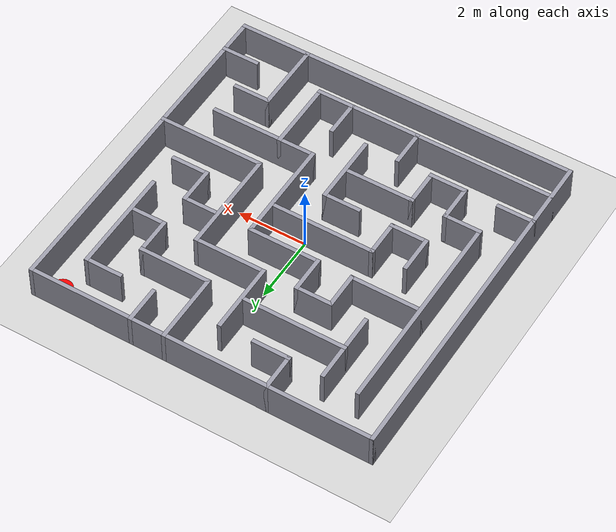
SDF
<?xml version="1.0" ?>
<sdf version="1.7">
  <world name="sharp_maze_world">
    <physics name="default_physics" default="0" type="ode">
      <max_step_size>0.001</max_step_size>
      <real_time_factor>1</real_time_factor>
      <real_time_update_rate>1000</real_time_update_rate>
    </physics>
    <scene>
      <ambient>0.6 0.6 0.6 1</ambient>
      <background>0.7 0.8 0.9 1</background>
      <shadows>true</shadows>
    </scene>
    <light name="sun" type="directional">
      <cast_shadows>true</cast_shadows>
      <pose>0 0 10 0 0 0</pose>
      <diffuse>0.8 0.8 0.8 1</diffuse>
      <specular>0.2 0.2 0.2 1</specular>
      <attenuation>
        <range>1000</range>
        <constant>0.9</constant>
        <linear>0.01</linear>
        <quadratic>0.001</quadratic>
      </attenuation>
      <direction>-0.4 0.2 -0.9</direction>
    </light>
    <model name="ground_plane">
      <static>true</static>
      <link name="link">
        <collision name="collision">
          <geometry>
            <plane><normal>0 0 1</normal><size>20.0 20.0</size></plane>
          </geometry>
          <surface><friction><ode><mu>100</mu><mu2>50</mu2></ode></friction></surface>
        </collision>
        <visual name="visual">
          <geometry>
            <plane><normal>0 0 1</normal><size>20.0 20.0</size></plane>
          </geometry>
          <material>
            <ambient>0.8 0.8 0.8 1</ambient>
            <diffuse>0.8 0.8 0.8 1</diffuse>
          </material>
        </visual>
      </link>
    </model>
    <model name="sharp_maze">
      <static>true</static>
      <pose>0 0 0 0 0 0</pose>
      <link name="walls">
        <collision name="wall_col_0">
          <pose>0.000 -5.000 0.500 0 0 0</pose>
          <geometry>
            <box><size>10.120 0.120 1.000</size></box>
          </geometry>
        </collision>
        <visual name="wall_vis_0">
          <pose>0.000 -5.000 0.500 0 0 0</pose>
          <geometry>
            <box><size>10.120 0.120 1.000</size></box>
          </geometry>
          <material>
            <ambient>0.5 0.5 0.55 1</ambient>
            <diffuse>0.6 0.6 0.65 1</diffuse>
          </material>
        </visual>
        <collision name="wall_col_1">
          <pose>-1.500 -4.000 0.500 0 0 0</pose>
          <geometry>
            <box><size>7.120 0.120 1.000</size></box>
          </geometry>
        </collision>
        <visual name="wall_vis_1">
          <pose>-1.500 -4.000 0.500 0 0 0</pose>
          <geometry>
            <box><size>7.120 0.120 1.000</size></box>
          </geometry>
          <material>
            <ambient>0.5 0.5 0.55 1</ambient>
            <diffuse>0.6 0.6 0.65 1</diffuse>
          </material>
        </visual>
        <collision name="wall_col_2">
          <pose>4.500 -4.000 0.500 0 0 0</pose>
          <geometry>
            <box><size>1.120 0.120 1.000</size></box>
          </geometry>
        </collision>
        <visual name="wall_vis_2">
          <pose>4.500 -4.000 0.500 0 0 0</pose>
          <geometry>
            <box><size>1.120 0.120 1.000</size></box>
          </geometry>
          <material>
            <ambient>0.5 0.5 0.55 1</ambient>
            <diffuse>0.6 0.6 0.65 1</diffuse>
          </material>
        </visual>
        <collision name="wall_col_3">
          <pose>-4.500 -3.000 0.500 0 0 0</pose>
          <geometry>
            <box><size>1.120 0.120 1.000</size></box>
          </geometry>
        </collision>
        <visual name="wall_vis_3">
          <pose>-4.500 -3.000 0.500 0 0 0</pose>
          <geometry>
            <box><size>1.120 0.120 1.000</size></box>
          </geometry>
          <material>
            <ambient>0.5 0.5 0.55 1</ambient>
            <diffuse>0.6 0.6 0.65 1</diffuse>
          </material>
        </visual>
        <collision name="wall_col_4">
          <pose>-2.500 -3.000 0.500 0 0 0</pose>
          <geometry>
            <box><size>1.120 0.120 1.000</size></box>
          </geometry>
        </collision>
        <visual name="wall_vis_4">
          <pose>-2.500 -3.000 0.500 0 0 0</pose>
          <geometry>
            <box><size>1.120 0.120 1.000</size></box>
          </geometry>
          <material>
            <ambient>0.5 0.5 0.55 1</ambient>
            <diffuse>0.6 0.6 0.65 1</diffuse>
          </material>
        </visual>
        <collision name="wall_col_5">
          <pose>3.500 -3.000 0.500 0 0 0</pose>
          <geometry>
            <box><size>1.120 0.120 1.000</size></box>
          </geometry>
        </collision>
        <visual name="wall_vis_5">
          <pose>3.500 -3.000 0.500 0 0 0</pose>
          <geometry>
            <box><size>1.120 0.120 1.000</size></box>
          </geometry>
          <material>
            <ambient>0.5 0.5 0.55 1</ambient>
            <diffuse>0.6 0.6 0.65 1</diffuse>
          </material>
        </visual>
        <collision name="wall_col_6">
          <pose>-3.500 -2.000 0.500 0 0 0</pose>
          <geometry>
            <box><size>1.120 0.120 1.000</size></box>
          </geometry>
        </collision>
        <visual name="wall_vis_6">
          <pose>-3.500 -2.000 0.500 0 0 0</pose>
          <geometry>
            <box><size>1.120 0.120 1.000</size></box>
          </geometry>
          <material>
            <ambient>0.5 0.5 0.55 1</ambient>
            <diffuse>0.6 0.6 0.65 1</diffuse>
          </material>
        </visual>
        <collision name="wall_col_7">
          <pose>-1.000 -2.000 0.500 0 0 0</pose>
          <geometry>
            <box><size>2.120 0.120 1.000</size></box>
          </geometry>
        </collision>
        <visual name="wall_vis_7">
          <pose>-1.000 -2.000 0.500 0 0 0</pose>
          <geometry>
            <box><size>2.120 0.120 1.000</size></box>
          </geometry>
          <material>
            <ambient>0.5 0.5 0.55 1</ambient>
            <diffuse>0.6 0.6 0.65 1</diffuse>
          </material>
        </visual>
        <collision name="wall_col_8">
          <pose>2.500 -2.000 0.500 0 0 0</pose>
          <geometry>
            <box><size>3.120 0.120 1.000</size></box>
          </geometry>
        </collision>
        <visual name="wall_vis_8">
          <pose>2.500 -2.000 0.500 0 0 0</pose>
          <geometry>
            <box><size>3.120 0.120 1.000</size></box>
          </geometry>
          <material>
            <ambient>0.5 0.5 0.55 1</ambient>
            <diffuse>0.6 0.6 0.65 1</diffuse>
          </material>
        </visual>
        <collision name="wall_col_9">
          <pose>-2.500 -1.000 0.500 0 0 0</pose>
          <geometry>
            <box><size>1.120 0.120 1.000</size></box>
          </geometry>
        </collision>
        <visual name="wall_vis_9">
          <pose>-2.500 -1.000 0.500 0 0 0</pose>
          <geometry>
            <box><size>1.120 0.120 1.000</size></box>
          </geometry>
          <material>
            <ambient>0.5 0.5 0.55 1</ambient>
            <diffuse>0.6 0.6 0.65 1</diffuse>
          </material>
        </visual>
        <collision name="wall_col_10">
          <pose>-0.500 -1.000 0.500 0 0 0</pose>
          <geometry>
            <box><size>1.120 0.120 1.000</size></box>
          </geometry>
        </collision>
        <visual name="wall_vis_10">
          <pose>-0.500 -1.000 0.500 0 0 0</pose>
          <geometry>
            <box><size>1.120 0.120 1.000</size></box>
          </geometry>
          <material>
            <ambient>0.5 0.5 0.55 1</ambient>
            <diffuse>0.6 0.6 0.65 1</diffuse>
          </material>
        </visual>
        <collision name="wall_col_11">
          <pose>3.500 -1.000 0.500 0 0 0</pose>
          <geometry>
            <box><size>3.120 0.120 1.000</size></box>
          </geometry>
        </collision>
        <visual name="wall_vis_11">
          <pose>3.500 -1.000 0.500 0 0 0</pose>
          <geometry>
            <box><size>3.120 0.120 1.000</size></box>
          </geometry>
          <material>
            <ambient>0.5 0.5 0.55 1</ambient>
            <diffuse>0.6 0.6 0.65 1</diffuse>
          </material>
        </visual>
        <collision name="wall_col_12">
          <pose>-0.500 0.000 0.500 0 0 0</pose>
          <geometry>
            <box><size>3.120 0.120 1.000</size></box>
          </geometry>
        </collision>
        <visual name="wall_vis_12">
          <pose>-0.500 0.000 0.500 0 0 0</pose>
          <geometry>
            <box><size>3.120 0.120 1.000</size></box>
          </geometry>
          <material>
            <ambient>0.5 0.5 0.55 1</ambient>
            <diffuse>0.6 0.6 0.65 1</diffuse>
          </material>
        </visual>
        <collision name="wall_col_13">
          <pose>3.500 0.000 0.500 0 0 0</pose>
          <geometry>
            <box><size>1.120 0.120 1.000</size></box>
          </geometry>
        </collision>
        <visual name="wall_vis_13">
          <pose>3.500 0.000 0.500 0 0 0</pose>
          <geometry>
            <box><size>1.120 0.120 1.000</size></box>
          </geometry>
          <material>
            <ambient>0.5 0.5 0.55 1</ambient>
            <diffuse>0.6 0.6 0.65 1</diffuse>
          </material>
        </visual>
        <collision name="wall_col_14">
          <pose>-3.000 1.000 0.500 0 0 0</pose>
          <geometry>
            <box><size>2.120 0.120 1.000</size></box>
          </geometry>
        </collision>
        <visual name="wall_vis_14">
          <pose>-3.000 1.000 0.500 0 0 0</pose>
          <geometry>
            <box><size>2.120 0.120 1.000</size></box>
          </geometry>
          <material>
            <ambient>0.5 0.5 0.55 1</ambient>
            <diffuse>0.6 0.6 0.65 1</diffuse>
          </material>
        </visual>
        <collision name="wall_col_15">
          <pose>0.000 1.000 0.500 0 0 0</pose>
          <geometry>
            <box><size>2.120 0.120 1.000</size></box>
          </geometry>
        </collision>
        <visual name="wall_vis_15">
          <pose>0.000 1.000 0.500 0 0 0</pose>
          <geometry>
            <box><size>2.120 0.120 1.000</size></box>
          </geometry>
          <material>
            <ambient>0.5 0.5 0.55 1</ambient>
            <diffuse>0.6 0.6 0.65 1</diffuse>
          </material>
        </visual>
        <collision name="wall_col_16">
          <pose>2.500 1.000 0.500 0 0 0</pose>
          <geometry>
            <box><size>1.120 0.120 1.000</size></box>
          </geometry>
        </collision>
        <visual name="wall_vis_16">
          <pose>2.500 1.000 0.500 0 0 0</pose>
          <geometry>
            <box><size>1.120 0.120 1.000</size></box>
          </geometry>
          <material>
            <ambient>0.5 0.5 0.55 1</ambient>
            <diffuse>0.6 0.6 0.65 1</diffuse>
          </material>
        </visual>
        <collision name="wall_col_17">
          <pose>-1.500 2.000 0.500 0 0 0</pose>
          <geometry>
            <box><size>1.120 0.120 1.000</size></box>
          </geometry>
        </collision>
        <visual name="wall_vis_17">
          <pose>-1.500 2.000 0.500 0 0 0</pose>
          <geometry>
            <box><size>1.120 0.120 1.000</size></box>
          </geometry>
          <material>
            <ambient>0.5 0.5 0.55 1</ambient>
            <diffuse>0.6 0.6 0.65 1</diffuse>
          </material>
        </visual>
        <collision name="wall_col_18">
          <pose>1.000 2.000 0.500 0 0 0</pose>
          <geometry>
            <box><size>2.120 0.120 1.000</size></box>
          </geometry>
        </collision>
        <visual name="wall_vis_18">
          <pose>1.000 2.000 0.500 0 0 0</pose>
          <geometry>
            <box><size>2.120 0.120 1.000</size></box>
          </geometry>
          <material>
            <ambient>0.5 0.5 0.55 1</ambient>
            <diffuse>0.6 0.6 0.65 1</diffuse>
          </material>
        </visual>
        <collision name="wall_col_19">
          <pose>3.500 2.000 0.500 0 0 0</pose>
          <geometry>
            <box><size>1.120 0.120 1.000</size></box>
          </geometry>
        </collision>
        <visual name="wall_vis_19">
          <pose>3.500 2.000 0.500 0 0 0</pose>
          <geometry>
            <box><size>1.120 0.120 1.000</size></box>
          </geometry>
          <material>
            <ambient>0.5 0.5 0.55 1</ambient>
            <diffuse>0.6 0.6 0.65 1</diffuse>
          </material>
        </visual>
        <collision name="wall_col_20">
          <pose>-1.500 3.000 0.500 0 0 0</pose>
          <geometry>
            <box><size>3.120 0.120 1.000</size></box>
          </geometry>
        </collision>
        <visual name="wall_vis_20">
          <pose>-1.500 3.000 0.500 0 0 0</pose>
          <geometry>
            <box><size>3.120 0.120 1.000</size></box>
          </geometry>
          <material>
            <ambient>0.5 0.5 0.55 1</ambient>
            <diffuse>0.6 0.6 0.65 1</diffuse>
          </material>
        </visual>
        <collision name="wall_col_21">
          <pose>2.000 3.000 0.500 0 0 0</pose>
          <geometry>
            <box><size>2.120 0.120 1.000</size></box>
          </geometry>
        </collision>
        <visual name="wall_vis_21">
          <pose>2.000 3.000 0.500 0 0 0</pose>
          <geometry>
            <box><size>2.120 0.120 1.000</size></box>
          </geometry>
          <material>
            <ambient>0.5 0.5 0.55 1</ambient>
            <diffuse>0.6 0.6 0.65 1</diffuse>
          </material>
        </visual>
        <collision name="wall_col_22">
          <pose>-1.500 4.000 0.500 0 0 0</pose>
          <geometry>
            <box><size>1.120 0.120 1.000</size></box>
          </geometry>
        </collision>
        <visual name="wall_vis_22">
          <pose>-1.500 4.000 0.500 0 0 0</pose>
          <geometry>
            <box><size>1.120 0.120 1.000</size></box>
          </geometry>
          <material>
            <ambient>0.5 0.5 0.55 1</ambient>
            <diffuse>0.6 0.6 0.65 1</diffuse>
          </material>
        </visual>
        <collision name="wall_col_23">
          <pose>3.500 4.000 0.500 0 0 0</pose>
          <geometry>
            <box><size>1.120 0.120 1.000</size></box>
          </geometry>
        </collision>
        <visual name="wall_vis_23">
          <pose>3.500 4.000 0.500 0 0 0</pose>
          <geometry>
            <box><size>1.120 0.120 1.000</size></box>
          </geometry>
          <material>
            <ambient>0.5 0.5 0.55 1</ambient>
            <diffuse>0.6 0.6 0.65 1</diffuse>
          </material>
        </visual>
        <collision name="wall_col_24">
          <pose>0.000 5.000 0.500 0 0 0</pose>
          <geometry>
            <box><size>10.120 0.120 1.000</size></box>
          </geometry>
        </collision>
        <visual name="wall_vis_24">
          <pose>0.000 5.000 0.500 0 0 0</pose>
          <geometry>
            <box><size>10.120 0.120 1.000</size></box>
          </geometry>
          <material>
            <ambient>0.5 0.5 0.55 1</ambient>
            <diffuse>0.6 0.6 0.65 1</diffuse>
          </material>
        </visual>
        <collision name="wall_col_25">
          <pose>-5.000 0.000 0.500 0 0 0</pose>
          <geometry>
            <box><size>0.120 10.120 1.000</size></box>
          </geometry>
        </collision>
        <visual name="wall_vis_25">
          <pose>-5.000 0.000 0.500 0 0 0</pose>
          <geometry>
            <box><size>0.120 10.120 1.000</size></box>
          </geometry>
          <material>
            <ambient>0.5 0.5 0.55 1</ambient>
            <diffuse>0.6 0.6 0.65 1</diffuse>
          </material>
        </visual>
        <collision name="wall_col_26">
          <pose>-4.000 1.000 0.500 0 0 0</pose>
          <geometry>
            <box><size>0.120 6.120 1.000</size></box>
          </geometry>
        </collision>
        <visual name="wall_vis_26">
          <pose>-4.000 1.000 0.500 0 0 0</pose>
          <geometry>
            <box><size>0.120 6.120 1.000</size></box>
          </geometry>
          <material>
            <ambient>0.5 0.5 0.55 1</ambient>
            <diffuse>0.6 0.6 0.65 1</diffuse>
          </material>
        </visual>
        <collision name="wall_col_27">
          <pose>-3.000 -2.500 0.500 0 0 0</pose>
          <geometry>
            <box><size>0.120 1.120 1.000</size></box>
          </geometry>
        </collision>
        <visual name="wall_vis_27">
          <pose>-3.000 -2.500 0.500 0 0 0</pose>
          <geometry>
            <box><size>0.120 1.120 1.000</size></box>
          </geometry>
          <material>
            <ambient>0.5 0.5 0.55 1</ambient>
            <diffuse>0.6 0.6 0.65 1</diffuse>
          </material>
        </visual>
        <collision name="wall_col_28">
          <pose>-3.000 -0.500 0.500 0 0 0</pose>
          <geometry>
            <box><size>0.120 1.120 1.000</size></box>
          </geometry>
        </collision>
        <visual name="wall_vis_28">
          <pose>-3.000 -0.500 0.500 0 0 0</pose>
          <geometry>
            <box><size>0.120 1.120 1.000</size></box>
          </geometry>
          <material>
            <ambient>0.5 0.5 0.55 1</ambient>
            <diffuse>0.6 0.6 0.65 1</diffuse>
          </material>
        </visual>
        <collision name="wall_col_29">
          <pose>-3.000 3.000 0.500 0 0 0</pose>
          <geometry>
            <box><size>0.120 2.120 1.000</size></box>
          </geometry>
        </collision>
        <visual name="wall_vis_29">
          <pose>-3.000 3.000 0.500 0 0 0</pose>
          <geometry>
            <box><size>0.120 2.120 1.000</size></box>
          </geometry>
          <material>
            <ambient>0.5 0.5 0.55 1</ambient>
            <diffuse>0.6 0.6 0.65 1</diffuse>
          </material>
        </visual>
        <collision name="wall_col_30">
          <pose>-2.000 -2.500 0.500 0 0 0</pose>
          <geometry>
            <box><size>0.120 1.120 1.000</size></box>
          </geometry>
        </collision>
        <visual name="wall_vis_30">
          <pose>-2.000 -2.500 0.500 0 0 0</pose>
          <geometry>
            <box><size>0.120 1.120 1.000</size></box>
          </geometry>
          <material>
            <ambient>0.5 0.5 0.55 1</ambient>
            <diffuse>0.6 0.6 0.65 1</diffuse>
          </material>
        </visual>
        <collision name="wall_col_31">
          <pose>-2.000 -0.500 0.500 0 0 0</pose>
          <geometry>
            <box><size>0.120 1.120 1.000</size></box>
          </geometry>
        </collision>
        <visual name="wall_vis_31">
          <pose>-2.000 -0.500 0.500 0 0 0</pose>
          <geometry>
            <box><size>0.120 1.120 1.000</size></box>
          </geometry>
          <material>
            <ambient>0.5 0.5 0.55 1</ambient>
            <diffuse>0.6 0.6 0.65 1</diffuse>
          </material>
        </visual>
        <collision name="wall_col_32">
          <pose>-2.000 1.500 0.500 0 0 0</pose>
          <geometry>
            <box><size>0.120 1.120 1.000</size></box>
          </geometry>
        </collision>
        <visual name="wall_vis_32">
          <pose>-2.000 1.500 0.500 0 0 0</pose>
          <geometry>
            <box><size>0.120 1.120 1.000</size></box>
          </geometry>
          <material>
            <ambient>0.5 0.5 0.55 1</ambient>
            <diffuse>0.6 0.6 0.65 1</diffuse>
          </material>
        </visual>
        <collision name="wall_col_33">
          <pose>-2.000 4.500 0.500 0 0 0</pose>
          <geometry>
            <box><size>0.120 1.120 1.000</size></box>
          </geometry>
        </collision>
        <visual name="wall_vis_33">
          <pose>-2.000 4.500 0.500 0 0 0</pose>
          <geometry>
            <box><size>0.120 1.120 1.000</size></box>
          </geometry>
          <material>
            <ambient>0.5 0.5 0.55 1</ambient>
            <diffuse>0.6 0.6 0.65 1</diffuse>
          </material>
        </visual>
        <collision name="wall_col_34">
          <pose>-1.000 -3.500 0.500 0 0 0</pose>
          <geometry>
            <box><size>0.120 1.120 1.000</size></box>
          </geometry>
        </collision>
        <visual name="wall_vis_34">
          <pose>-1.000 -3.500 0.500 0 0 0</pose>
          <geometry>
            <box><size>0.120 1.120 1.000</size></box>
          </geometry>
          <material>
            <ambient>0.5 0.5 0.55 1</ambient>
            <diffuse>0.6 0.6 0.65 1</diffuse>
          </material>
        </visual>
        <collision name="wall_col_35">
          <pose>-1.000 1.500 0.500 0 0 0</pose>
          <geometry>
            <box><size>0.120 1.120 1.000</size></box>
          </geometry>
        </collision>
        <visual name="wall_vis_35">
          <pose>-1.000 1.500 0.500 0 0 0</pose>
          <geometry>
            <box><size>0.120 1.120 1.000</size></box>
          </geometry>
          <material>
            <ambient>0.5 0.5 0.55 1</ambient>
            <diffuse>0.6 0.6 0.65 1</diffuse>
          </material>
        </visual>
        <collision name="wall_col_36">
          <pose>0.000 -2.000 0.500 0 0 0</pose>
          <geometry>
            <box><size>0.120 2.120 1.000</size></box>
          </geometry>
        </collision>
        <visual name="wall_vis_36">
          <pose>0.000 -2.000 0.500 0 0 0</pose>
          <geometry>
            <box><size>0.120 2.120 1.000</size></box>
          </geometry>
          <material>
            <ambient>0.5 0.5 0.55 1</ambient>
            <diffuse>0.6 0.6 0.65 1</diffuse>
          </material>
        </visual>
        <collision name="wall_col_37">
          <pose>0.000 3.000 0.500 0 0 0</pose>
          <geometry>
            <box><size>0.120 2.120 1.000</size></box>
          </geometry>
        </collision>
        <visual name="wall_vis_37">
          <pose>0.000 3.000 0.500 0 0 0</pose>
          <geometry>
            <box><size>0.120 2.120 1.000</size></box>
          </geometry>
          <material>
            <ambient>0.5 0.5 0.55 1</ambient>
            <diffuse>0.6 0.6 0.65 1</diffuse>
          </material>
        </visual>
        <collision name="wall_col_38">
          <pose>1.000 -3.500 0.500 0 0 0</pose>
          <geometry>
            <box><size>0.120 1.120 1.000</size></box>
          </geometry>
        </collision>
        <visual name="wall_vis_38">
          <pose>1.000 -3.500 0.500 0 0 0</pose>
          <geometry>
            <box><size>0.120 1.120 1.000</size></box>
          </geometry>
          <material>
            <ambient>0.5 0.5 0.55 1</ambient>
            <diffuse>0.6 0.6 0.65 1</diffuse>
          </material>
        </visual>
        <collision name="wall_col_39">
          <pose>1.000 -0.500 0.500 0 0 0</pose>
          <geometry>
            <box><size>0.120 3.120 1.000</size></box>
          </geometry>
        </collision>
        <visual name="wall_vis_39">
          <pose>1.000 -0.500 0.500 0 0 0</pose>
          <geometry>
            <box><size>0.120 3.120 1.000</size></box>
          </geometry>
          <material>
            <ambient>0.5 0.5 0.55 1</ambient>
            <diffuse>0.6 0.6 0.65 1</diffuse>
          </material>
        </visual>
        <collision name="wall_col_40">
          <pose>1.000 4.000 0.500 0 0 0</pose>
          <geometry>
            <box><size>0.120 2.120 1.000</size></box>
          </geometry>
        </collision>
        <visual name="wall_vis_40">
          <pose>1.000 4.000 0.500 0 0 0</pose>
          <geometry>
            <box><size>0.120 2.120 1.000</size></box>
          </geometry>
          <material>
            <ambient>0.5 0.5 0.55 1</ambient>
            <diffuse>0.6 0.6 0.65 1</diffuse>
          </material>
        </visual>
        <collision name="wall_col_41">
          <pose>2.000 -3.000 0.500 0 0 0</pose>
          <geometry>
            <box><size>0.120 2.120 1.000</size></box>
          </geometry>
        </collision>
        <visual name="wall_vis_41">
          <pose>2.000 -3.000 0.500 0 0 0</pose>
          <geometry>
            <box><size>0.120 2.120 1.000</size></box>
          </geometry>
          <material>
            <ambient>0.5 0.5 0.55 1</ambient>
            <diffuse>0.6 0.6 0.65 1</diffuse>
          </material>
        </visual>
        <collision name="wall_col_42">
          <pose>2.000 0.500 0.500 0 0 0</pose>
          <geometry>
            <box><size>0.120 3.120 1.000</size></box>
          </geometry>
        </collision>
        <visual name="wall_vis_42">
          <pose>2.000 0.500 0.500 0 0 0</pose>
          <geometry>
            <box><size>0.120 3.120 1.000</size></box>
          </geometry>
          <material>
            <ambient>0.5 0.5 0.55 1</ambient>
            <diffuse>0.6 0.6 0.65 1</diffuse>
          </material>
        </visual>
        <collision name="wall_col_43">
          <pose>2.000 4.500 0.500 0 0 0</pose>
          <geometry>
            <box><size>0.120 1.120 1.000</size></box>
          </geometry>
        </collision>
        <visual name="wall_vis_43">
          <pose>2.000 4.500 0.500 0 0 0</pose>
          <geometry>
            <box><size>0.120 1.120 1.000</size></box>
          </geometry>
          <material>
            <ambient>0.5 0.5 0.55 1</ambient>
            <diffuse>0.6 0.6 0.65 1</diffuse>
          </material>
        </visual>
        <collision name="wall_col_44">
          <pose>3.000 -4.000 0.500 0 0 0</pose>
          <geometry>
            <box><size>0.120 2.120 1.000</size></box>
          </geometry>
        </collision>
        <visual name="wall_vis_44">
          <pose>3.000 -4.000 0.500 0 0 0</pose>
          <geometry>
            <box><size>0.120 2.120 1.000</size></box>
          </geometry>
          <material>
            <ambient>0.5 0.5 0.55 1</ambient>
            <diffuse>0.6 0.6 0.65 1</diffuse>
          </material>
        </visual>
        <collision name="wall_col_45">
          <pose>3.000 0.500 0.500 0 0 0</pose>
          <geometry>
            <box><size>0.120 1.120 1.000</size></box>
          </geometry>
        </collision>
        <visual name="wall_vis_45">
          <pose>3.000 0.500 0.500 0 0 0</pose>
          <geometry>
            <box><size>0.120 1.120 1.000</size></box>
          </geometry>
          <material>
            <ambient>0.5 0.5 0.55 1</ambient>
            <diffuse>0.6 0.6 0.65 1</diffuse>
          </material>
        </visual>
        <collision name="wall_col_46">
          <pose>3.000 2.500 0.500 0 0 0</pose>
          <geometry>
            <box><size>0.120 1.120 1.000</size></box>
          </geometry>
        </collision>
        <visual name="wall_vis_46">
          <pose>3.000 2.500 0.500 0 0 0</pose>
          <geometry>
            <box><size>0.120 1.120 1.000</size></box>
          </geometry>
          <material>
            <ambient>0.5 0.5 0.55 1</ambient>
            <diffuse>0.6 0.6 0.65 1</diffuse>
          </material>
        </visual>
        <collision name="wall_col_47">
          <pose>4.000 2.500 0.500 0 0 0</pose>
          <geometry>
            <box><size>0.120 3.120 1.000</size></box>
          </geometry>
        </collision>
        <visual name="wall_vis_47">
          <pose>4.000 2.500 0.500 0 0 0</pose>
          <geometry>
            <box><size>0.120 3.120 1.000</size></box>
          </geometry>
          <material>
            <ambient>0.5 0.5 0.55 1</ambient>
            <diffuse>0.6 0.6 0.65 1</diffuse>
          </material>
        </visual>
        <collision name="wall_col_48">
          <pose>5.000 0.000 0.500 0 0 0</pose>
          <geometry>
            <box><size>0.120 10.120 1.000</size></box>
          </geometry>
        </collision>
        <visual name="wall_vis_48">
          <pose>5.000 0.000 0.500 0 0 0</pose>
          <geometry>
            <box><size>0.120 10.120 1.000</size></box>
          </geometry>
          <material>
            <ambient>0.5 0.5 0.55 1</ambient>
            <diffuse>0.6 0.6 0.65 1</diffuse>
          </material>
        </visual>
      </link>
    </model>
    <model name="start_marker">
      <static>true</static>
      <pose>-4.500 -4.500 0.01 0 0 0</pose>
      <link name="link">
        <visual name="visual">
          <geometry><cylinder><radius>0.3</radius><length>0.02</length></cylinder></geometry>
          <material><ambient>0 1 0 1</ambient><diffuse>0 1 0 1</diffuse></material>
        </visual>
      </link>
    </model>
    <model name="goal_marker">
      <static>true</static>
      <pose>4.500 4.500 0.01 0 0 0</pose>
      <link name="link">
        <visual name="visual">
          <geometry><cylinder><radius>0.3</radius><length>0.02</length></cylinder></geometry>
          <material><ambient>1 0 0 1</ambient><diffuse>1 0 0 1</diffuse></material>
        </visual>
      </link>
    </model>
  </world>
</sdf>
